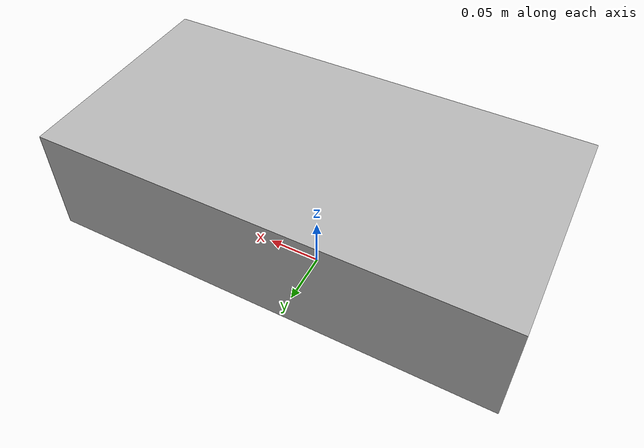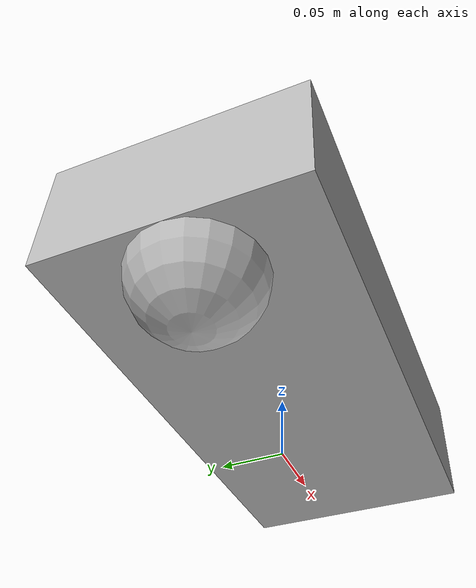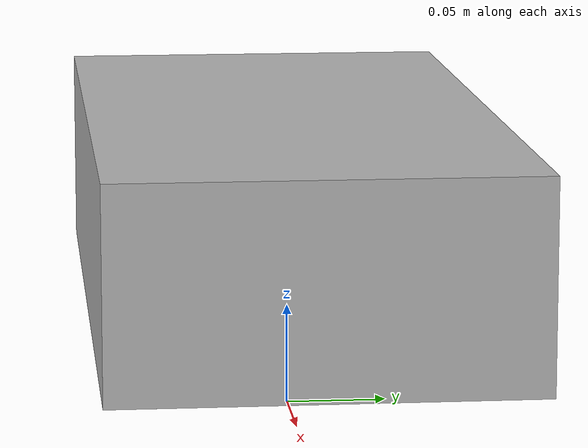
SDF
<?xml version='1.0'?>
<sdf version='1.4'>
  <model name="my_robot">
	 <static>true</static>
	 <link name='chassis'>
            <pose>0 0 .1 0 0 0</pose>

            <collision name='collision'>
              <geometry>
                <box>
                  <size>.4 .2 .1</size>
                </box>
              </geometry>
            </collision>

            <visual name='visual'>
              <geometry>
                <box>
                  <size>.4 .2 .1</size>
                </box>
              </geometry>
            </visual>
            <collision name='caster_collision'>
            <pose>-0.15 0 -0.05 0 0 0</pose>
            <geometry>
                <sphere>
                <radius>.05</radius>
              </sphere>
            </geometry>

            <surface>
              <friction>
                <ode>
                  <mu>0</mu>
                  <mu2>0</mu2>
                  <slip1>1.0</slip1>
                  <slip2>1.0</slip2>
                </ode>
              </friction>
            </surface>
          </collision>

          <visual name='caster_visual'>
            <pose>-0.15 0 -0.05 0 0 0</pose>
            <geometry>
              <sphere>
                <radius>.05</radius>
              </sphere>
            </geometry>
          </visual>
          </link>
  </model>
</sdf>
